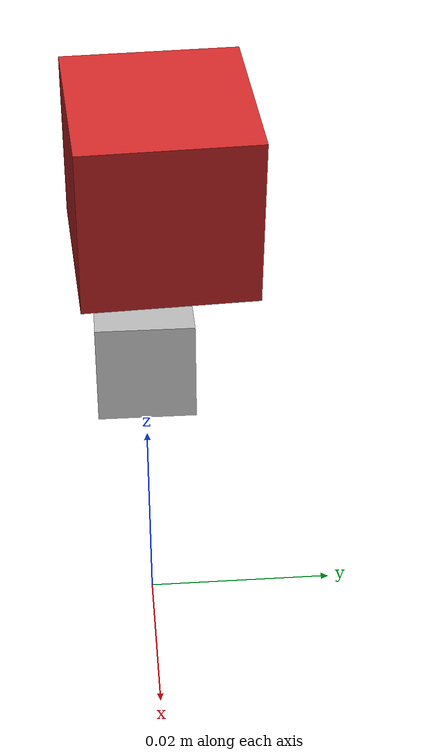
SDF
<sdf version='1.7'>
  <model name='clyde'>
    <link name='base_footprint'>
      <inertial>
        <pose>0.002226 -0.001551 0.027938 0 -0 0</pose>
        <mass>0.207996</mass>
        <inertia>
          <ixx>9.37836e-05</ixx>
          <ixy>-1.59854e-05</ixy>
          <ixz>4.90189e-06</ixz>
          <iyy>0.00020289</iyy>
          <iyz>-9.9545e-07</iyz>
          <izz>0.000278102</izz>
        </inertia>
      </inertial>
      <collision name='base_footprint_fixed_joint_lump__base_link_collision'>
        <pose>0 0 0 0 -0 0</pose>
        <geometry>
          <mesh>
            <scale>0.001 0.001 0.001</scale>
            <uri>file:///workspaces/clyderos2/install/share/clyde_description/src/models/clyde_model/meshes/base_link.stl</uri>
          </mesh>
        </geometry>
        <surface>
          <contact>
            <ode/>
          </contact>
          <friction>
            <ode>
              <mu>0.2</mu>
              <mu2>0.2</mu2>
            </ode>
          </friction>
        </surface>
      </collision>
      <collision name='base_footprint_fixed_joint_lump__front__1_collision_1'>
        <pose>0 0 0 0 -0 0</pose>
        <geometry>
          <mesh>
            <scale>0.001 0.001 0.001</scale>
            <uri>file:///workspaces/clyderos2/install/share/clyde_description/src/models/clyde_model/meshes/front__1.stl</uri>
          </mesh>
        </geometry>
        <surface>
          <contact>
            <ode/>
          </contact>
          <friction>
            <ode>
              <mu>0.2</mu>
              <mu2>0.2</mu2>
            </ode>
          </friction>
        </surface>
      </collision>
      <collision name='base_footprint_fixed_joint_lump__rear__1_collision_2'>
        <pose>0 0 0 0 -0 0</pose>
        <geometry>
          <mesh>
            <scale>0.001 0.001 0.001</scale>
            <uri>file:///workspaces/clyderos2/install/share/clyde_description/src/models/clyde_model/meshes/rear__1.stl</uri>
          </mesh>
        </geometry>
        <surface>
          <contact>
            <ode/>
          </contact>
          <friction>
            <ode>
              <mu>0.2</mu>
              <mu2>0.2</mu2>
            </ode>
          </friction>
        </surface>
      </collision>
      <collision name='base_footprint_fixed_joint_lump__servo_rfs_1_collision_3'>
        <pose>0 0 0 0 -0 0</pose>
        <geometry>
          <mesh>
            <scale>0.001 0.001 0.001</scale>
            <uri>file:///workspaces/clyderos2/install/share/clyde_description/src/models/clyde_model/meshes/servo_rfs_1.stl</uri>
          </mesh>
        </geometry>
        <surface>
          <contact>
            <ode/>
          </contact>
          <friction>
            <ode>
              <mu>0.2</mu>
              <mu2>0.2</mu2>
            </ode>
          </friction>
        </surface>
      </collision>
      <collision name='base_footprint_fixed_joint_lump__servo_lfs_1_collision_4'>
        <pose>0 0 0 0 -0 0</pose>
        <geometry>
          <mesh>
            <scale>0.001 0.001 0.001</scale>
            <uri>file:///workspaces/clyderos2/install/share/clyde_description/src/models/clyde_model/meshes/servo_lfs_1.stl</uri>
          </mesh>
        </geometry>
        <surface>
          <contact>
            <ode/>
          </contact>
          <friction>
            <ode>
              <mu>0.2</mu>
              <mu2>0.2</mu2>
            </ode>
          </friction>
        </surface>
      </collision>
      <collision name='base_footprint_fixed_joint_lump__servo_rrs__1_collision_5'>
        <pose>0 0 0 0 -0 0</pose>
        <geometry>
          <mesh>
            <scale>0.001 0.001 0.001</scale>
            <uri>file:///workspaces/clyderos2/install/share/clyde_description/src/models/clyde_model/meshes/servo_rrs__1.stl</uri>
          </mesh>
        </geometry>
        <surface>
          <contact>
            <ode/>
          </contact>
          <friction>
            <ode>
              <mu>0.2</mu>
              <mu2>0.2</mu2>
            </ode>
          </friction>
        </surface>
      </collision>
      <collision name='base_footprint_fixed_joint_lump__cover_1_collision_6'>
        <pose>0 0 0 0 -0 0</pose>
        <geometry>
          <mesh>
            <scale>0.001 0.001 0.001</scale>
            <uri>file:///workspaces/clyderos2/install/share/clyde_description/src/models/clyde_model/meshes/cover_1.stl</uri>
          </mesh>
        </geometry>
        <surface>
          <contact>
            <ode/>
          </contact>
          <friction>
            <ode>
              <mu>0.2</mu>
              <mu2>0.2</mu2>
            </ode>
          </friction>
        </surface>
      </collision>
      <collision name='base_footprint_fixed_joint_lump__battery_1_collision_7'>
        <pose>0 0 0 0 -0 0</pose>
        <geometry>
          <mesh>
            <scale>0.001 0.001 0.001</scale>
            <uri>file:///workspaces/clyderos2/install/share/clyde_description/src/models/clyde_model/meshes/battery_1.stl</uri>
          </mesh>
        </geometry>
        <surface>
          <contact>
            <ode/>
          </contact>
          <friction>
            <ode>
              <mu>0.2</mu>
              <mu2>0.2</mu2>
            </ode>
          </friction>
        </surface>
      </collision>
      <collision name='base_footprint_fixed_joint_lump__servo_lrs__1_collision_8'>
        <pose>0 0 0 0 -0 0</pose>
        <geometry>
          <mesh>
            <scale>0.001 0.001 0.001</scale>
            <uri>file:///workspaces/clyderos2/install/share/clyde_description/src/models/clyde_model/meshes/servo_lrs__1.stl</uri>
          </mesh>
        </geometry>
        <surface>
          <contact>
            <ode/>
          </contact>
          <friction>
            <ode>
              <mu>0.2</mu>
              <mu2>0.2</mu2>
            </ode>
          </friction>
        </surface>
      </collision>
      <collision name='base_footprint_fixed_joint_lump__c_neck__1_collision_9'>
        <pose>0 0 0 0 -0 0</pose>
        <geometry>
          <mesh>
            <scale>0.001 0.001 0.001</scale>
            <uri>file:///workspaces/clyderos2/install/share/clyde_description/src/models/clyde_model/meshes/c_neck__1.stl</uri>
          </mesh>
        </geometry>
        <surface>
          <contact>
            <ode/>
          </contact>
          <friction>
            <ode>
              <mu>0.2</mu>
              <mu2>0.2</mu2>
            </ode>
          </friction>
        </surface>
      </collision>
      <collision name='base_footprint_fixed_joint_lump__imu_link_collision_10'>
        <pose>0 0 0.03 0 -0 0</pose>
        <geometry>
          <box>
            <size>0.01 0.01 0.01</size>
          </box>
        </geometry>
        <surface>
          <contact>
            <ode/>
          </contact>
          <friction>
            <ode/>
          </friction>
        </surface>
      </collision>
      <visual name='base_footprint_fixed_joint_lump__base_link_visual'>
        <pose>0 0 0 0 -0 0</pose>
        <geometry>
          <mesh>
            <scale>0.001 0.001 0.001</scale>
            <uri>file:///workspaces/clyderos2/install/share/clyde_description/src/models/clyde_model/meshes/base_link.stl</uri>
          </mesh>
        </geometry>
        <material>
          <ambient>255 171 80 1</ambient>
        </material>
      </visual>
      <visual name='base_footprint_fixed_joint_lump__front__1_visual_1'>
        <pose>0 0 0 0 -0 0</pose>
        <geometry>
          <mesh>
            <scale>0.001 0.001 0.001</scale>
            <uri>file:///workspaces/clyderos2/install/share/clyde_description/src/models/clyde_model/meshes/front__1.stl</uri>
          </mesh>
        </geometry>
        <material>
          <ambient>0 167 255 1</ambient>
        </material>
      </visual>
      <visual name='base_footprint_fixed_joint_lump__rear__1_visual_2'>
        <pose>0 0 0 0 -0 0</pose>
        <geometry>
          <mesh>
            <scale>0.001 0.001 0.001</scale>
            <uri>file:///workspaces/clyderos2/install/share/clyde_description/src/models/clyde_model/meshes/rear__1.stl</uri>
          </mesh>
        </geometry>
        <material>
          <ambient>0 167 255 1</ambient>
        </material>
      </visual>
      <visual name='base_footprint_fixed_joint_lump__servo_rfs_1_visual_3'>
        <pose>0 0 0 0 -0 0</pose>
        <geometry>
          <mesh>
            <scale>0.001 0.001 0.001</scale>
            <uri>file:///workspaces/clyderos2/install/share/clyde_description/src/models/clyde_model/meshes/servo_rfs_1.stl</uri>
          </mesh>
        </geometry>
        <material>
          <ambient>39 61 51 1</ambient>
        </material>
      </visual>
      <visual name='base_footprint_fixed_joint_lump__servo_lfs_1_visual_4'>
        <pose>0 0 0 0 -0 0</pose>
        <geometry>
          <mesh>
            <scale>0.001 0.001 0.001</scale>
            <uri>file:///workspaces/clyderos2/install/share/clyde_description/src/models/clyde_model/meshes/servo_lfs_1.stl</uri>
          </mesh>
        </geometry>
        <material>
          <ambient>39 61 51 1</ambient>
        </material>
      </visual>
      <visual name='base_footprint_fixed_joint_lump__servo_rrs__1_visual_5'>
        <pose>0 0 0 0 -0 0</pose>
        <geometry>
          <mesh>
            <scale>0.001 0.001 0.001</scale>
            <uri>file:///workspaces/clyderos2/install/share/clyde_description/src/models/clyde_model/meshes/servo_rrs__1.stl</uri>
          </mesh>
        </geometry>
        <material>
          <ambient>39 61 51 1</ambient>
        </material>
      </visual>
      <visual name='base_footprint_fixed_joint_lump__cover_1_visual_6'>
        <pose>0 0 0 0 -0 0</pose>
        <geometry>
          <mesh>
            <scale>0.001 0.001 0.001</scale>
            <uri>file:///workspaces/clyderos2/install/share/clyde_description/src/models/clyde_model/meshes/cover_1.stl</uri>
          </mesh>
        </geometry>
        <material>
          <ambient>73 73 70 1</ambient>
        </material>
      </visual>
      <visual name='base_footprint_fixed_joint_lump__battery_1_visual_7'>
        <pose>0 0 0 0 -0 0</pose>
        <geometry>
          <mesh>
            <scale>0.001 0.001 0.001</scale>
            <uri>file:///workspaces/clyderos2/install/share/clyde_description/src/models/clyde_model/meshes/battery_1.stl</uri>
          </mesh>
        </geometry>
        <material>
          <ambient>73 73 70 1</ambient>
        </material>
      </visual>
      <visual name='base_footprint_fixed_joint_lump__servo_lrs__1_visual_8'>
        <pose>0 0 0 0 -0 0</pose>
        <geometry>
          <mesh>
            <scale>0.001 0.001 0.001</scale>
            <uri>file:///workspaces/clyderos2/install/share/clyde_description/src/models/clyde_model/meshes/servo_lrs__1.stl</uri>
          </mesh>
        </geometry>
        <material>
          <ambient>39 61 51 1</ambient>
        </material>
      </visual>
      <visual name='base_footprint_fixed_joint_lump__c_neck__1_visual_9'>
        <pose>0 0 0 0 -0 0</pose>
        <geometry>
          <mesh>
            <scale>0.001 0.001 0.001</scale>
            <uri>file:///workspaces/clyderos2/install/share/clyde_description/src/models/clyde_model/meshes/c_neck__1.stl</uri>
          </mesh>
        </geometry>
        <material>
          <ambient>244 229 167 1</ambient>
        </material>
      </visual>
      <visual name='base_footprint_fixed_joint_lump__imu_link_visual_10'>
        <pose>0 0 0.03 0 -0 0</pose>
        <geometry>
          <box>
            <size>0.01 0.01 0.01</size>
          </box>
        </geometry>
      </visual>
      <gravity>1</gravity>
      <self_collide>1</self_collide>
      <sensor name='imu_sensor' type='imu'>
        <plugin name='imu_plugin' filename='libgazebo_ros_imu_sensor.so'>
          <ros>
            <namespace>/clyde</namespace>
            <remapping>~/out:=imu</remapping>
          </ros>
          <initial_orientation_as_reference>0</initial_orientation_as_reference>
        </plugin>
        <always_on>1</always_on>
        <update_rate>100</update_rate>
        <visualize>1</visualize>
        <imu>
          <angular_velocity>
            <x>
              <noise type='gaussian'>
                <mean>0</mean>
                <stddev>0.0002</stddev>
                <bias_mean>7.5e-06</bias_mean>
                <bias_stddev>8e-07</bias_stddev>
              </noise>
            </x>
            <y>
              <noise type='gaussian'>
                <mean>0</mean>
                <stddev>0.0002</stddev>
                <bias_mean>7.5e-06</bias_mean>
                <bias_stddev>8e-07</bias_stddev>
              </noise>
            </y>
            <z>
              <noise type='gaussian'>
                <mean>0</mean>
                <stddev>0.0002</stddev>
                <bias_mean>7.5e-06</bias_mean>
                <bias_stddev>8e-07</bias_stddev>
              </noise>
            </z>
          </angular_velocity>
          <linear_acceleration>
            <x>
              <noise type='gaussian'>
                <mean>0</mean>
                <stddev>0.017</stddev>
                <bias_mean>0.1</bias_mean>
                <bias_stddev>0.001</bias_stddev>
              </noise>
            </x>
            <y>
              <noise type='gaussian'>
                <mean>0</mean>
                <stddev>0.017</stddev>
                <bias_mean>0.1</bias_mean>
                <bias_stddev>0.001</bias_stddev>
              </noise>
            </y>
            <z>
              <noise type='gaussian'>
                <mean>0</mean>
                <stddev>0.017</stddev>
                <bias_mean>0.1</bias_mean>
                <bias_stddev>0.001</bias_stddev>
              </noise>
            </z>
          </linear_acceleration>
        </imu>
        <pose>0 0 0.03 0 -0 0</pose>
      </sensor>
    </link>
    <joint name='shrfs_joint' type='revolute'>
      <pose relative_to='base_footprint'>0.0525 -0.0485 0.022 0 -0.804 0</pose>
      <parent>base_footprint</parent>
      <child>c_thrf__1</child>
      <axis>
        <xyz>0 1 0</xyz>
        <limit>
          <lower>-1e+16</lower>
          <upper>1e+16</upper>
        </limit>
        <dynamics>
          <spring_reference>0</spring_reference>
          <spring_stiffness>0</spring_stiffness>
        </dynamics>
      </axis>
    </joint>
    <link name='c_thrf__1'>
      <pose relative_to='shrfs_joint'>0 0 0 0 -0 0</pose>
      <inertial>
        <pose>-0.022218 -0.001215 -0.005953 0 -0 0</pose>
        <mass>0.0047131</mass>
        <inertia>
          <ixx>6.06305e-08</ixx>
          <ixy>-1.63518e-08</ixy>
          <ixz>-1.99985e-07</ixz>
          <iyy>7.99936e-07</iyy>
          <iyz>-4.36986e-09</iyz>
          <izz>7.53395e-07</izz>
        </inertia>
      </inertial>
      <collision name='c_thrf__1_collision'>
        <pose>-0.0525 0.0485 -0.022 0 -0 0</pose>
        <geometry>
          <mesh>
            <scale>0.001 0.001 0.001</scale>
            <uri>file:///workspaces/clyderos2/install/share/clyde_description/src/models/clyde_model/meshes/c_thrf__1.stl</uri>
          </mesh>
        </geometry>
        <surface>
          <contact>
            <ode/>
          </contact>
          <friction>
            <ode>
              <mu>0.2</mu>
              <mu2>0.2</mu2>
            </ode>
          </friction>
        </surface>
      </collision>
      <collision name='c_thrf__1_fixed_joint_lump__th_rf_1_collision_1'>
        <pose>-0.0525 0.0485 -0.022 0 -0 0</pose>
        <geometry>
          <mesh>
            <scale>0.001 0.001 0.001</scale>
            <uri>file:///workspaces/clyderos2/install/share/clyde_description/src/models/clyde_model/meshes/th_rf_1.stl</uri>
          </mesh>
        </geometry>
        <surface>
          <contact>
            <ode/>
          </contact>
          <friction>
            <ode>
              <mu>0.2</mu>
              <mu2>0.2</mu2>
            </ode>
          </friction>
        </surface>
      </collision>
      <collision name='c_thrf__1_fixed_joint_lump__tho_rf__1_collision_2'>
        <pose>-0.0525 0.0485 -0.022 0 -0 0</pose>
        <geometry>
          <mesh>
            <scale>0.001 0.001 0.001</scale>
            <uri>file:///workspaces/clyderos2/install/share/clyde_description/src/models/clyde_model/meshes/tho_rf__1.stl</uri>
          </mesh>
        </geometry>
        <surface>
          <contact>
            <ode/>
          </contact>
          <friction>
            <ode>
              <mu>0.2</mu>
              <mu2>0.2</mu2>
            </ode>
          </friction>
        </surface>
      </collision>
      <collision name='c_thrf__1_fixed_joint_lump__c_thorf_1_collision_3'>
        <pose>-0.0525 0.0485 -0.022 0 -0 0</pose>
        <geometry>
          <mesh>
            <scale>0.001 0.001 0.001</scale>
            <uri>file:///workspaces/clyderos2/install/share/clyde_description/src/models/clyde_model/meshes/c_thorf_1.stl</uri>
          </mesh>
        </geometry>
        <surface>
          <contact>
            <ode/>
          </contact>
          <friction>
            <ode>
              <mu>0.2</mu>
              <mu2>0.2</mu2>
            </ode>
          </friction>
        </surface>
      </collision>
      <collision name='c_thrf__1_fixed_joint_lump__tube__1_collision_4'>
        <pose>-0.0525 0.0485 -0.022 0 -0 0</pose>
        <geometry>
          <mesh>
            <scale>0.001 0.001 0.001</scale>
            <uri>file:///workspaces/clyderos2/install/share/clyde_description/src/models/clyde_model/meshes/tube__1.stl</uri>
          </mesh>
        </geometry>
        <surface>
          <contact>
            <ode/>
          </contact>
          <friction>
            <ode>
              <mu>0.2</mu>
              <mu2>0.2</mu2>
            </ode>
          </friction>
        </surface>
      </collision>
      <visual name='c_thrf__1_visual'>
        <pose>-0.0525 0.0485 -0.022 0 -0 0</pose>
        <geometry>
          <mesh>
            <scale>0.001 0.001 0.001</scale>
            <uri>file:///workspaces/clyderos2/install/share/clyde_description/src/models/clyde_model/meshes/c_thrf__1.stl</uri>
          </mesh>
        </geometry>
        <material>
          <ambient>244 229 167 1</ambient>
        </material>
      </visual>
      <visual name='c_thrf__1_fixed_joint_lump__th_rf_1_visual_1'>
        <pose>-0.0525 0.0485 -0.022 0 -0 0</pose>
        <geometry>
          <mesh>
            <scale>0.001 0.001 0.001</scale>
            <uri>file:///workspaces/clyderos2/install/share/clyde_description/src/models/clyde_model/meshes/th_rf_1.stl</uri>
          </mesh>
        </geometry>
        <material>
          <ambient>255 171 80 1</ambient>
        </material>
      </visual>
      <visual name='c_thrf__1_fixed_joint_lump__tho_rf__1_visual_2'>
        <pose>-0.0525 0.0485 -0.022 0 -0 0</pose>
        <geometry>
          <mesh>
            <scale>0.001 0.001 0.001</scale>
            <uri>file:///workspaces/clyderos2/install/share/clyde_description/src/models/clyde_model/meshes/tho_rf__1.stl</uri>
          </mesh>
        </geometry>
        <material>
          <ambient>73 73 70 1</ambient>
        </material>
      </visual>
      <visual name='c_thrf__1_fixed_joint_lump__c_thorf_1_visual_3'>
        <pose>-0.0525 0.0485 -0.022 0 -0 0</pose>
        <geometry>
          <mesh>
            <scale>0.001 0.001 0.001</scale>
            <uri>file:///workspaces/clyderos2/install/share/clyde_description/src/models/clyde_model/meshes/c_thorf_1.stl</uri>
          </mesh>
        </geometry>
        <material>
          <ambient>244 229 167 1</ambient>
        </material>
      </visual>
      <visual name='c_thrf__1_fixed_joint_lump__tube__1_visual_4'>
        <pose>-0.0525 0.0485 -0.022 0 -0 0</pose>
        <geometry>
          <mesh>
            <scale>0.001 0.001 0.001</scale>
            <uri>file:///workspaces/clyderos2/install/share/clyde_description/src/models/clyde_model/meshes/tube__1.stl</uri>
          </mesh>
        </geometry>
        <material>
          <ambient>0 167 255 1</ambient>
        </material>
      </visual>
      <self_collide>1</self_collide>
    </link>
    <joint name='shrft_joint' type='revolute'>
      <pose relative_to='c_thrf__1'>-0.044433 0.00142 -0.011906 -3.14159 1.287 -3.14159</pose>
      <parent>c_thrf__1</parent>
      <child>servos_rf_1</child>
      <axis>
        <xyz>0 1 0</xyz>
        <limit>
          <lower>-1e+16</lower>
          <upper>1e+16</upper>
        </limit>
        <dynamics>
          <spring_reference>0</spring_reference>
          <spring_stiffness>0</spring_stiffness>
        </dynamics>
      </axis>
    </joint>
    <link name='servos_rf_1'>
      <pose relative_to='shrft_joint'>0 0 0 0 -0 0</pose>
      <inertial>
        <pose>0.007653 0.012412 -0.000544 0 -0 0</pose>
        <mass>0.0185326</mass>
        <inertia>
          <ixx>1.00116e-06</ixx>
          <ixy>-2.08202e-08</ixy>
          <ixz>1.04994e-08</ixz>
          <iyy>2.47087e-06</iyy>
          <iyz>4.64478e-10</iyz>
          <izz>2.47155e-06</izz>
        </inertia>
      </inertial>
      <collision name='servos_rf_1_collision'>
        <pose>-0.008067 0.04708 -0.010094 0 -0 0</pose>
        <geometry>
          <mesh>
            <scale>0.001 0.001 0.001</scale>
            <uri>file:///workspaces/clyderos2/install/share/clyde_description/src/models/clyde_model/meshes/servos_rf_1.stl</uri>
          </mesh>
        </geometry>
        <surface>
          <contact>
            <ode/>
          </contact>
          <friction>
            <ode>
              <mu>0.2</mu>
              <mu2>0.2</mu2>
            </ode>
          </friction>
        </surface>
      </collision>
      <collision name='servos_rf_1_fixed_joint_lump__shank_rf_1_collision_1'>
        <pose>-0.008067 0.04708 -0.010094 0 -0 0</pose>
        <geometry>
          <mesh>
            <scale>0.001 0.001 0.001</scale>
            <uri>file:///workspaces/clyderos2/install/share/clyde_description/src/models/clyde_model/meshes/shank_rf_1.stl</uri>
          </mesh>
        </geometry>
        <surface>
          <contact>
            <ode/>
          </contact>
          <friction>
            <ode>
              <mu>0.2</mu>
              <mu2>0.2</mu2>
            </ode>
          </friction>
        </surface>
      </collision>
      <visual name='servos_rf_1_visual'>
        <pose>-0.008067 0.04708 -0.010094 0 -0 0</pose>
        <geometry>
          <mesh>
            <scale>0.001 0.001 0.001</scale>
            <uri>file:///workspaces/clyderos2/install/share/clyde_description/src/models/clyde_model/meshes/servos_rf_1.stl</uri>
          </mesh>
        </geometry>
        <material>
          <ambient>39 61 51 1</ambient>
        </material>
      </visual>
      <visual name='servos_rf_1_fixed_joint_lump__shank_rf_1_visual_1'>
        <pose>-0.008067 0.04708 -0.010094 0 -0 0</pose>
        <geometry>
          <mesh>
            <scale>0.001 0.001 0.001</scale>
            <uri>file:///workspaces/clyderos2/install/share/clyde_description/src/models/clyde_model/meshes/shank_rf_1.stl</uri>
          </mesh>
        </geometry>
        <material>
          <ambient>73 73 70 1</ambient>
        </material>
      </visual>
      <self_collide>1</self_collide>
    </link>
    <joint name='shlfs_joint' type='revolute'>
      <pose relative_to='base_footprint'>0.0525 0.0485 0.022 0 -0.804 0</pose>
      <parent>base_footprint</parent>
      <child>c_thlf_1</child>
      <axis>
        <xyz>0 1 0</xyz>
        <limit>
          <lower>-1e+16</lower>
          <upper>1e+16</upper>
        </limit>
        <dynamics>
          <spring_reference>0</spring_reference>
          <spring_stiffness>0</spring_stiffness>
        </dynamics>
      </axis>
    </joint>
    <link name='c_thlf_1'>
      <pose relative_to='shlfs_joint'>0 0 0 0 -0 0</pose>
      <inertial>
        <pose>-0.022218 0.001215 -0.005953 0 -0 0</pose>
        <mass>0.00471308</mass>
        <inertia>
          <ixx>6.06299e-08</ixx>
          <ixy>1.63516e-08</ixy>
          <ixz>-1.99983e-07</ixz>
          <iyy>7.99931e-07</iyy>
          <iyz>4.36994e-09</iyz>
          <izz>7.5339e-07</izz>
        </inertia>
      </inertial>
      <collision name='c_thlf_1_collision'>
        <pose>-0.0525 -0.0485 -0.022 0 -0 0</pose>
        <geometry>
          <mesh>
            <scale>0.001 0.001 0.001</scale>
            <uri>file:///workspaces/clyderos2/install/share/clyde_description/src/models/clyde_model/meshes/c_thlf_1.stl</uri>
          </mesh>
        </geometry>
        <surface>
          <contact>
            <ode/>
          </contact>
          <friction>
            <ode>
              <mu>0.2</mu>
              <mu2>0.2</mu2>
            </ode>
          </friction>
        </surface>
      </collision>
      <collision name='c_thlf_1_fixed_joint_lump__th_lf_1_collision_1'>
        <pose>-0.0525 -0.0485 -0.022 0 -0 0</pose>
        <geometry>
          <mesh>
            <scale>0.001 0.001 0.001</scale>
            <uri>file:///workspaces/clyderos2/install/share/clyde_description/src/models/clyde_model/meshes/th_lf_1.stl</uri>
          </mesh>
        </geometry>
        <surface>
          <contact>
            <ode/>
          </contact>
          <friction>
            <ode>
              <mu>0.2</mu>
              <mu2>0.2</mu2>
            </ode>
          </friction>
        </surface>
      </collision>
      <collision name='c_thlf_1_fixed_joint_lump__tho_lf_1_collision_2'>
        <pose>-0.0525 -0.0485 -0.022 0 -0 0</pose>
        <geometry>
          <mesh>
            <scale>0.001 0.001 0.001</scale>
            <uri>file:///workspaces/clyderos2/install/share/clyde_description/src/models/clyde_model/meshes/tho_lf_1.stl</uri>
          </mesh>
        </geometry>
        <surface>
          <contact>
            <ode/>
          </contact>
          <friction>
            <ode>
              <mu>0.2</mu>
              <mu2>0.2</mu2>
            </ode>
          </friction>
        </surface>
      </collision>
      <collision name='c_thlf_1_fixed_joint_lump__c_tholf_1_collision_3'>
        <pose>-0.0525 -0.0485 -0.022 0 -0 0</pose>
        <geometry>
          <mesh>
            <scale>0.001 0.001 0.001</scale>
            <uri>file:///workspaces/clyderos2/install/share/clyde_description/src/models/clyde_model/meshes/c_tholf_1.stl</uri>
          </mesh>
        </geometry>
        <surface>
          <contact>
            <ode/>
          </contact>
          <friction>
            <ode>
              <mu>0.2</mu>
              <mu2>0.2</mu2>
            </ode>
          </friction>
        </surface>
      </collision>
      <collision name='c_thlf_1_fixed_joint_lump__tube_lf_1_collision_4'>
        <pose>-0.0525 -0.0485 -0.022 0 -0 0</pose>
        <geometry>
          <mesh>
            <scale>0.001 0.001 0.001</scale>
            <uri>file:///workspaces/clyderos2/install/share/clyde_description/src/models/clyde_model/meshes/tube_lf_1.stl</uri>
          </mesh>
        </geometry>
        <surface>
          <contact>
            <ode/>
          </contact>
          <friction>
            <ode>
              <mu>0.2</mu>
              <mu2>0.2</mu2>
            </ode>
          </friction>
        </surface>
      </collision>
      <visual name='c_thlf_1_visual'>
        <pose>-0.0525 -0.0485 -0.022 0 -0 0</pose>
        <geometry>
          <mesh>
            <scale>0.001 0.001 0.001</scale>
            <uri>file:///workspaces/clyderos2/install/share/clyde_description/src/models/clyde_model/meshes/c_thlf_1.stl</uri>
          </mesh>
        </geometry>
        <material>
          <ambient>244 229 167 1</ambient>
        </material>
      </visual>
      <visual name='c_thlf_1_fixed_joint_lump__th_lf_1_visual_1'>
        <pose>-0.0525 -0.0485 -0.022 0 -0 0</pose>
        <geometry>
          <mesh>
            <scale>0.001 0.001 0.001</scale>
            <uri>file:///workspaces/clyderos2/install/share/clyde_description/src/models/clyde_model/meshes/th_lf_1.stl</uri>
          </mesh>
        </geometry>
        <material>
          <ambient>255 171 80 1</ambient>
        </material>
      </visual>
      <visual name='c_thlf_1_fixed_joint_lump__tho_lf_1_visual_2'>
        <pose>-0.0525 -0.0485 -0.022 0 -0 0</pose>
        <geometry>
          <mesh>
            <scale>0.001 0.001 0.001</scale>
            <uri>file:///workspaces/clyderos2/install/share/clyde_description/src/models/clyde_model/meshes/tho_lf_1.stl</uri>
          </mesh>
        </geometry>
        <material>
          <ambient>73 73 70 1</ambient>
        </material>
      </visual>
      <visual name='c_thlf_1_fixed_joint_lump__c_tholf_1_visual_3'>
        <pose>-0.0525 -0.0485 -0.022 0 -0 0</pose>
        <geometry>
          <mesh>
            <scale>0.001 0.001 0.001</scale>
            <uri>file:///workspaces/clyderos2/install/share/clyde_description/src/models/clyde_model/meshes/c_tholf_1.stl</uri>
          </mesh>
        </geometry>
        <material>
          <ambient>244 229 167 1</ambient>
        </material>
      </visual>
      <visual name='c_thlf_1_fixed_joint_lump__tube_lf_1_visual_4'>
        <pose>-0.0525 -0.0485 -0.022 0 -0 0</pose>
        <geometry>
          <mesh>
            <scale>0.001 0.001 0.001</scale>
            <uri>file:///workspaces/clyderos2/install/share/clyde_description/src/models/clyde_model/meshes/tube_lf_1.stl</uri>
          </mesh>
        </geometry>
        <material>
          <ambient>0 167 255 1</ambient>
        </material>
      </visual>
      <self_collide>1</self_collide>
    </link>
    <joint name='shlft_joint' type='revolute'>
      <pose relative_to='c_thlf_1'>-0.044433 -0.00142 -0.011906 -3.14159 1.287 -3.14159</pose>
      <parent>c_thlf_1</parent>
      <child>servos_lf_1</child>
      <axis>
        <xyz>0 1 0</xyz>
        <limit>
          <lower>-1e+16</lower>
          <upper>1e+16</upper>
        </limit>
        <dynamics>
          <spring_reference>0</spring_reference>
          <spring_stiffness>0</spring_stiffness>
        </dynamics>
      </axis>
    </joint>
    <link name='servos_lf_1'>
      <pose relative_to='shlft_joint'>0 0 0 0 -0 0</pose>
      <inertial>
        <pose>0.007653 -0.012412 -0.000544 0 -0 0</pose>
        <mass>0.0185326</mass>
        <inertia>
          <ixx>1.00116e-06</ixx>
          <ixy>2.08202e-08</ixy>
          <ixz>1.04995e-08</ixz>
          <iyy>2.47087e-06</iyy>
          <iyz>-4.64481e-10</iyz>
          <izz>2.47156e-06</izz>
        </inertia>
      </inertial>
      <collision name='servos_lf_1_collision'>
        <pose>-0.008067 -0.04708 -0.010094 0 -0 0</pose>
        <geometry>
          <mesh>
            <scale>0.001 0.001 0.001</scale>
            <uri>file:///workspaces/clyderos2/install/share/clyde_description/src/models/clyde_model/meshes/servos_lf_1.stl</uri>
          </mesh>
        </geometry>
        <surface>
          <contact>
            <ode/>
          </contact>
          <friction>
            <ode>
              <mu>0.2</mu>
              <mu2>0.2</mu2>
            </ode>
          </friction>
        </surface>
      </collision>
      <collision name='servos_lf_1_fixed_joint_lump__shank_lf_1_collision_1'>
        <pose>-0.008067 -0.04708 -0.010094 0 -0 0</pose>
        <geometry>
          <mesh>
            <scale>0.001 0.001 0.001</scale>
            <uri>file:///workspaces/clyderos2/install/share/clyde_description/src/models/clyde_model/meshes/shank_lf_1.stl</uri>
          </mesh>
        </geometry>
        <surface>
          <contact>
            <ode/>
          </contact>
          <friction>
            <ode>
              <mu>0.2</mu>
              <mu2>0.2</mu2>
            </ode>
          </friction>
        </surface>
      </collision>
      <visual name='servos_lf_1_visual'>
        <pose>-0.008067 -0.04708 -0.010094 0 -0 0</pose>
        <geometry>
          <mesh>
            <scale>0.001 0.001 0.001</scale>
            <uri>file:///workspaces/clyderos2/install/share/clyde_description/src/models/clyde_model/meshes/servos_lf_1.stl</uri>
          </mesh>
        </geometry>
        <material>
          <ambient>39 61 51 1</ambient>
        </material>
      </visual>
      <visual name='servos_lf_1_fixed_joint_lump__shank_lf_1_visual_1'>
        <pose>-0.008067 -0.04708 -0.010094 0 -0 0</pose>
        <geometry>
          <mesh>
            <scale>0.001 0.001 0.001</scale>
            <uri>file:///workspaces/clyderos2/install/share/clyde_description/src/models/clyde_model/meshes/shank_lf_1.stl</uri>
          </mesh>
        </geometry>
        <material>
          <ambient>73 73 70 1</ambient>
        </material>
      </visual>
      <self_collide>1</self_collide>
    </link>
    <joint name='shrrs_joint' type='revolute'>
      <pose relative_to='base_footprint'>-0.0525 -0.0485 0.022 0 -0.804 0</pose>
      <parent>base_footprint</parent>
      <child>c_thrr_1</child>
      <axis>
        <xyz>0 -1 0</xyz>
        <limit>
          <lower>-1e+16</lower>
          <upper>1e+16</upper>
        </limit>
        <dynamics>
          <spring_reference>0</spring_reference>
          <spring_stiffness>0</spring_stiffness>
        </dynamics>
      </axis>
    </joint>
    <link name='c_thrr_1'>
      <pose relative_to='shrrs_joint'>0 0 0 0 -0 0</pose>
      <inertial>
        <pose>-0.022226 -0.001215 -0.005953 0 -0 0</pose>
        <mass>0.0047131</mass>
        <inertia>
          <ixx>6.06307e-08</ixx>
          <ixy>-1.63522e-08</ixy>
          <ixz>-1.99985e-07</ixz>
          <iyy>7.9994e-07</iyy>
          <iyz>-4.36991e-09</iyz>
          <izz>7.53399e-07</izz>
        </inertia>
      </inertial>
      <collision name='c_thrr_1_collision'>
        <pose>0.0525 0.0485 -0.022 0 -0 0</pose>
        <geometry>
          <mesh>
            <scale>0.001 0.001 0.001</scale>
            <uri>file:///workspaces/clyderos2/install/share/clyde_description/src/models/clyde_model/meshes/c_thrr_1.stl</uri>
          </mesh>
        </geometry>
        <surface>
          <contact>
            <ode/>
          </contact>
          <friction>
            <ode>
              <mu>0.2</mu>
              <mu2>0.2</mu2>
            </ode>
          </friction>
        </surface>
      </collision>
      <collision name='c_thrr_1_fixed_joint_lump__th_rr_1_collision_1'>
        <pose>0.0525 0.0485 -0.022 0 -0 0</pose>
        <geometry>
          <mesh>
            <scale>0.001 0.001 0.001</scale>
            <uri>file:///workspaces/clyderos2/install/share/clyde_description/src/models/clyde_model/meshes/th_rr_1.stl</uri>
          </mesh>
        </geometry>
        <surface>
          <contact>
            <ode/>
          </contact>
          <friction>
            <ode>
              <mu>0.2</mu>
              <mu2>0.2</mu2>
            </ode>
          </friction>
        </surface>
      </collision>
      <collision name='c_thrr_1_fixed_joint_lump__tho_rr_1_collision_2'>
        <pose>0.0525 0.0485 -0.022 0 -0 0</pose>
        <geometry>
          <mesh>
            <scale>0.001 0.001 0.001</scale>
            <uri>file:///workspaces/clyderos2/install/share/clyde_description/src/models/clyde_model/meshes/tho_rr_1.stl</uri>
          </mesh>
        </geometry>
        <surface>
          <contact>
            <ode/>
          </contact>
          <friction>
            <ode>
              <mu>0.2</mu>
              <mu2>0.2</mu2>
            </ode>
          </friction>
        </surface>
      </collision>
      <collision name='c_thrr_1_fixed_joint_lump__c_thorr_1_collision_3'>
        <pose>0.0525 0.0485 -0.022 0 -0 0</pose>
        <geometry>
          <mesh>
            <scale>0.001 0.001 0.001</scale>
            <uri>file:///workspaces/clyderos2/install/share/clyde_description/src/models/clyde_model/meshes/c_thorr_1.stl</uri>
          </mesh>
        </geometry>
        <surface>
          <contact>
            <ode/>
          </contact>
          <friction>
            <ode>
              <mu>0.2</mu>
              <mu2>0.2</mu2>
            </ode>
          </friction>
        </surface>
      </collision>
      <collision name='c_thrr_1_fixed_joint_lump__tube_rr_1_collision_4'>
        <pose>0.0525 0.0485 -0.022 0 -0 0</pose>
        <geometry>
          <mesh>
            <scale>0.001 0.001 0.001</scale>
            <uri>file:///workspaces/clyderos2/install/share/clyde_description/src/models/clyde_model/meshes/tube_rr_1.stl</uri>
          </mesh>
        </geometry>
        <surface>
          <contact>
            <ode/>
          </contact>
          <friction>
            <ode>
              <mu>0.2</mu>
              <mu2>0.2</mu2>
            </ode>
          </friction>
        </surface>
      </collision>
      <visual name='c_thrr_1_visual'>
        <pose>0.0525 0.0485 -0.022 0 -0 0</pose>
        <geometry>
          <mesh>
            <scale>0.001 0.001 0.001</scale>
            <uri>file:///workspaces/clyderos2/install/share/clyde_description/src/models/clyde_model/meshes/c_thrr_1.stl</uri>
          </mesh>
        </geometry>
        <material>
          <ambient>244 229 167 1</ambient>
        </material>
      </visual>
      <visual name='c_thrr_1_fixed_joint_lump__th_rr_1_visual_1'>
        <pose>0.0525 0.0485 -0.022 0 -0 0</pose>
        <geometry>
          <mesh>
            <scale>0.001 0.001 0.001</scale>
            <uri>file:///workspaces/clyderos2/install/share/clyde_description/src/models/clyde_model/meshes/th_rr_1.stl</uri>
          </mesh>
        </geometry>
        <material>
          <ambient>255 171 80 1</ambient>
        </material>
      </visual>
      <visual name='c_thrr_1_fixed_joint_lump__tho_rr_1_visual_2'>
        <pose>0.0525 0.0485 -0.022 0 -0 0</pose>
        <geometry>
          <mesh>
            <scale>0.001 0.001 0.001</scale>
            <uri>file:///workspaces/clyderos2/install/share/clyde_description/src/models/clyde_model/meshes/tho_rr_1.stl</uri>
          </mesh>
        </geometry>
        <material>
          <ambient>73 73 70 1</ambient>
        </material>
      </visual>
      <visual name='c_thrr_1_fixed_joint_lump__c_thorr_1_visual_3'>
        <pose>0.0525 0.0485 -0.022 0 -0 0</pose>
        <geometry>
          <mesh>
            <scale>0.001 0.001 0.001</scale>
            <uri>file:///workspaces/clyderos2/install/share/clyde_description/src/models/clyde_model/meshes/c_thorr_1.stl</uri>
          </mesh>
        </geometry>
        <material>
          <ambient>244 229 167 1</ambient>
        </material>
      </visual>
      <visual name='c_thrr_1_fixed_joint_lump__tube_rr_1_visual_4'>
        <pose>0.0525 0.0485 -0.022 0 -0 0</pose>
        <geometry>
          <mesh>
            <scale>0.001 0.001 0.001</scale>
            <uri>file:///workspaces/clyderos2/install/share/clyde_description/src/models/clyde_model/meshes/tube_rr_1.stl</uri>
          </mesh>
        </geometry>
        <material>
          <ambient>0 167 255 1</ambient>
        </material>
      </visual>
      <self_collide>1</self_collide>
    </link>
    <joint name='shrrt_joint' type='revolute'>
      <pose relative_to='c_thrr_1'>-0.044433 0.00142 -0.011906 -3.14159 1.287 -3.14159</pose>
      <parent>c_thrr_1</parent>
      <child>servos_rr_1</child>
      <axis>
        <xyz>0 1 0</xyz>
        <limit>
          <lower>-1e+16</lower>
          <upper>1e+16</upper>
        </limit>
        <dynamics>
          <spring_reference>0</spring_reference>
          <spring_stiffness>0</spring_stiffness>
        </dynamics>
      </axis>
    </joint>
    <link name='servos_rr_1'>
      <pose relative_to='shrrt_joint'>0 0 0 0 -0 0</pose>
      <inertial>
        <pose>0.007653 0.012412 -0.000544 0 -0 0</pose>
        <mass>0.0185326</mass>
        <inertia>
          <ixx>1.00116e-06</ixx>
          <ixy>-2.08189e-08</ixy>
          <ixz>1.04987e-08</ixz>
          <iyy>2.47081e-06</iyy>
          <iyz>4.64478e-10</iyz>
          <izz>2.4715e-06</izz>
        </inertia>
      </inertial>
      <collision name='servos_rr_1_collision'>
        <pose>0.096933 0.04708 -0.010094 0 -0 0</pose>
        <geometry>
          <mesh>
            <scale>0.001 0.001 0.001</scale>
            <uri>file:///workspaces/clyderos2/install/share/clyde_description/src/models/clyde_model/meshes/servos_rr_1.stl</uri>
          </mesh>
        </geometry>
        <surface>
          <contact>
            <ode/>
          </contact>
          <friction>
            <ode>
              <mu>0.2</mu>
              <mu2>0.2</mu2>
            </ode>
          </friction>
        </surface>
      </collision>
      <collision name='servos_rr_1_fixed_joint_lump__shank_rr_1_collision_1'>
        <pose>0.096933 0.04708 -0.010094 0 -0 0</pose>
        <geometry>
          <mesh>
            <scale>0.001 0.001 0.001</scale>
            <uri>file:///workspaces/clyderos2/install/share/clyde_description/src/models/clyde_model/meshes/shank_rr_1.stl</uri>
          </mesh>
        </geometry>
        <surface>
          <contact>
            <ode/>
          </contact>
          <friction>
            <ode>
              <mu>0.2</mu>
              <mu2>0.2</mu2>
            </ode>
          </friction>
        </surface>
      </collision>
      <visual name='servos_rr_1_visual'>
        <pose>0.096933 0.04708 -0.010094 0 -0 0</pose>
        <geometry>
          <mesh>
            <scale>0.001 0.001 0.001</scale>
            <uri>file:///workspaces/clyderos2/install/share/clyde_description/src/models/clyde_model/meshes/servos_rr_1.stl</uri>
          </mesh>
        </geometry>
        <material>
          <ambient>39 61 51 1</ambient>
        </material>
      </visual>
      <visual name='servos_rr_1_fixed_joint_lump__shank_rr_1_visual_1'>
        <pose>0.096933 0.04708 -0.010094 0 -0 0</pose>
        <geometry>
          <mesh>
            <scale>0.001 0.001 0.001</scale>
            <uri>file:///workspaces/clyderos2/install/share/clyde_description/src/models/clyde_model/meshes/shank_rr_1.stl</uri>
          </mesh>
        </geometry>
        <material>
          <ambient>73 73 70 1</ambient>
        </material>
      </visual>
      <self_collide>1</self_collide>
    </link>
    <joint name='shlrs_joint' type='revolute'>
      <pose relative_to='base_footprint'>-0.0525 0.0485 0.022 0 -0.804 0</pose>
      <parent>base_footprint</parent>
      <child>c_thlr_1</child>
      <axis>
        <xyz>0 -1 0</xyz>
        <limit>
          <lower>-1e+16</lower>
          <upper>1e+16</upper>
        </limit>
        <dynamics>
          <spring_reference>0</spring_reference>
          <spring_stiffness>0</spring_stiffness>
        </dynamics>
      </axis>
    </joint>
    <link name='c_thlr_1'>
      <pose relative_to='shlrs_joint'>0 0 0 0 -0 0</pose>
      <inertial>
        <pose>-0.022226 0.001215 -0.005953 0 -0 0</pose>
        <mass>0.00471308</mass>
        <inertia>
          <ixx>6.06299e-08</ixx>
          <ixy>1.6352e-08</ixy>
          <ixz>-1.99984e-07</ixz>
          <iyy>7.99935e-07</iyy>
          <iyz>4.36999e-09</iyz>
          <izz>7.53394e-07</izz>
        </inertia>
      </inertial>
      <collision name='c_thlr_1_collision'>
        <pose>0.0525 -0.0485 -0.022 0 -0 0</pose>
        <geometry>
          <mesh>
            <scale>0.001 0.001 0.001</scale>
            <uri>file:///workspaces/clyderos2/install/share/clyde_description/src/models/clyde_model/meshes/c_thlr_1.stl</uri>
          </mesh>
        </geometry>
        <surface>
          <contact>
            <ode/>
          </contact>
          <friction>
            <ode>
              <mu>0.2</mu>
              <mu2>0.2</mu2>
            </ode>
          </friction>
        </surface>
      </collision>
      <collision name='c_thlr_1_fixed_joint_lump__th_lr__1_collision_1'>
        <pose>0.0525 -0.0485 -0.022 0 -0 0</pose>
        <geometry>
          <mesh>
            <scale>0.001 0.001 0.001</scale>
            <uri>file:///workspaces/clyderos2/install/share/clyde_description/src/models/clyde_model/meshes/th_lr__1.stl</uri>
          </mesh>
        </geometry>
        <surface>
          <contact>
            <ode/>
          </contact>
          <friction>
            <ode>
              <mu>0.2</mu>
              <mu2>0.2</mu2>
            </ode>
          </friction>
        </surface>
      </collision>
      <collision name='c_thlr_1_fixed_joint_lump__tho_lr_1_collision_2'>
        <pose>0.0525 -0.0485 -0.022 0 -0 0</pose>
        <geometry>
          <mesh>
            <scale>0.001 0.001 0.001</scale>
            <uri>file:///workspaces/clyderos2/install/share/clyde_description/src/models/clyde_model/meshes/tho_lr_1.stl</uri>
          </mesh>
        </geometry>
        <surface>
          <contact>
            <ode/>
          </contact>
          <friction>
            <ode>
              <mu>0.2</mu>
              <mu2>0.2</mu2>
            </ode>
          </friction>
        </surface>
      </collision>
      <collision name='c_thlr_1_fixed_joint_lump__c_tholr__1_collision_3'>
        <pose>0.0525 -0.0485 -0.022 0 -0 0</pose>
        <geometry>
          <mesh>
            <scale>0.001 0.001 0.001</scale>
            <uri>file:///workspaces/clyderos2/install/share/clyde_description/src/models/clyde_model/meshes/c_tholr__1.stl</uri>
          </mesh>
        </geometry>
        <surface>
          <contact>
            <ode/>
          </contact>
          <friction>
            <ode>
              <mu>0.2</mu>
              <mu2>0.2</mu2>
            </ode>
          </friction>
        </surface>
      </collision>
      <collision name='c_thlr_1_fixed_joint_lump__tube_lr_1_collision_4'>
        <pose>0.0525 -0.0485 -0.022 0 -0 0</pose>
        <geometry>
          <mesh>
            <scale>0.001 0.001 0.001</scale>
            <uri>file:///workspaces/clyderos2/install/share/clyde_description/src/models/clyde_model/meshes/tube_lr_1.stl</uri>
          </mesh>
        </geometry>
        <surface>
          <contact>
            <ode/>
          </contact>
          <friction>
            <ode>
              <mu>0.2</mu>
              <mu2>0.2</mu2>
            </ode>
          </friction>
        </surface>
      </collision>
      <visual name='c_thlr_1_visual'>
        <pose>0.0525 -0.0485 -0.022 0 -0 0</pose>
        <geometry>
          <mesh>
            <scale>0.001 0.001 0.001</scale>
            <uri>file:///workspaces/clyderos2/install/share/clyde_description/src/models/clyde_model/meshes/c_thlr_1.stl</uri>
          </mesh>
        </geometry>
        <material>
          <ambient>244 229 167 1</ambient>
        </material>
      </visual>
      <visual name='c_thlr_1_fixed_joint_lump__th_lr__1_visual_1'>
        <pose>0.0525 -0.0485 -0.022 0 -0 0</pose>
        <geometry>
          <mesh>
            <scale>0.001 0.001 0.001</scale>
            <uri>file:///workspaces/clyderos2/install/share/clyde_description/src/models/clyde_model/meshes/th_lr__1.stl</uri>
          </mesh>
        </geometry>
        <material>
          <ambient>255 171 80 1</ambient>
        </material>
      </visual>
      <visual name='c_thlr_1_fixed_joint_lump__tho_lr_1_visual_2'>
        <pose>0.0525 -0.0485 -0.022 0 -0 0</pose>
        <geometry>
          <mesh>
            <scale>0.001 0.001 0.001</scale>
            <uri>file:///workspaces/clyderos2/install/share/clyde_description/src/models/clyde_model/meshes/tho_lr_1.stl</uri>
          </mesh>
        </geometry>
        <material>
          <ambient>73 73 70 1</ambient>
        </material>
      </visual>
      <visual name='c_thlr_1_fixed_joint_lump__c_tholr__1_visual_3'>
        <pose>0.0525 -0.0485 -0.022 0 -0 0</pose>
        <geometry>
          <mesh>
            <scale>0.001 0.001 0.001</scale>
            <uri>file:///workspaces/clyderos2/install/share/clyde_description/src/models/clyde_model/meshes/c_tholr__1.stl</uri>
          </mesh>
        </geometry>
        <material>
          <ambient>244 229 167 1</ambient>
        </material>
      </visual>
      <visual name='c_thlr_1_fixed_joint_lump__tube_lr_1_visual_4'>
        <pose>0.0525 -0.0485 -0.022 0 -0 0</pose>
        <geometry>
          <mesh>
            <scale>0.001 0.001 0.001</scale>
            <uri>file:///workspaces/clyderos2/install/share/clyde_description/src/models/clyde_model/meshes/tube_lr_1.stl</uri>
          </mesh>
        </geometry>
        <material>
          <ambient>0 167 255 1</ambient>
        </material>
      </visual>
      <self_collide>1</self_collide>
    </link>
    <joint name='shlrt_joint' type='revolute'>
      <pose relative_to='c_thlr_1'>-0.044433 -0.001418 -0.011906 -3.14159 1.287 -3.14159</pose>
      <parent>c_thlr_1</parent>
      <child>servos_lr_1</child>
      <axis>
        <xyz>0 1 0</xyz>
        <limit>
          <lower>-1e+16</lower>
          <upper>1e+16</upper>
        </limit>
        <dynamics>
          <spring_reference>0</spring_reference>
          <spring_stiffness>0</spring_stiffness>
        </dynamics>
      </axis>
    </joint>
    <link name='servos_lr_1'>
      <pose relative_to='shlrt_joint'>0 0 0 0 -0 0</pose>
      <inertial>
        <pose>0.007653 -0.012414 -0.000544 0 -0 0</pose>
        <mass>0.0185326</mass>
        <inertia>
          <ixx>1.00116e-06</ixx>
          <ixy>2.08189e-08</ixy>
          <ixz>1.04988e-08</ixz>
          <iyy>2.47081e-06</iyy>
          <iyz>-4.64481e-10</iyz>
          <izz>2.4715e-06</izz>
        </inertia>
      </inertial>
      <collision name='servos_lr_1_collision'>
        <pose>0.096933 -0.047082 -0.010094 0 -0 0</pose>
        <geometry>
          <mesh>
            <scale>0.001 0.001 0.001</scale>
            <uri>file:///workspaces/clyderos2/install/share/clyde_description/src/models/clyde_model/meshes/servos_lr_1.stl</uri>
          </mesh>
        </geometry>
        <surface>
          <contact>
            <ode/>
          </contact>
          <friction>
            <ode>
              <mu>0.2</mu>
              <mu2>0.2</mu2>
            </ode>
          </friction>
        </surface>
      </collision>
      <collision name='servos_lr_1_fixed_joint_lump__shank_lr_1_collision_1'>
        <pose>0.096933 -0.047082 -0.010094 0 -0 0</pose>
        <geometry>
          <mesh>
            <scale>0.001 0.001 0.001</scale>
            <uri>file:///workspaces/clyderos2/install/share/clyde_description/src/models/clyde_model/meshes/shank_lr_1.stl</uri>
          </mesh>
        </geometry>
        <surface>
          <contact>
            <ode/>
          </contact>
          <friction>
            <ode>
              <mu>0.2</mu>
              <mu2>0.2</mu2>
            </ode>
          </friction>
        </surface>
      </collision>
      <visual name='servos_lr_1_visual'>
        <pose>0.096933 -0.047082 -0.010094 0 -0 0</pose>
        <geometry>
          <mesh>
            <scale>0.001 0.001 0.001</scale>
            <uri>file:///workspaces/clyderos2/install/share/clyde_description/src/models/clyde_model/meshes/servos_lr_1.stl</uri>
          </mesh>
        </geometry>
        <material>
          <ambient>39 61 51 1</ambient>
        </material>
      </visual>
      <visual name='servos_lr_1_fixed_joint_lump__shank_lr_1_visual_1'>
        <pose>0.096933 -0.047082 -0.010094 0 -0 0</pose>
        <geometry>
          <mesh>
            <scale>0.001 0.001 0.001</scale>
            <uri>file:///workspaces/clyderos2/install/share/clyde_description/src/models/clyde_model/meshes/shank_lr_1.stl</uri>
          </mesh>
        </geometry>
        <material>
          <ambient>73 73 70 1</ambient>
        </material>
      </visual>
      <self_collide>1</self_collide>
    </link>
    <joint name='neck_joint' type='revolute'>
      <pose relative_to='base_footprint'>0.047554 0 0.035941 0.328142 -0.100934 0.592231</pose>
      <parent>base_footprint</parent>
      <child>servo_neck__1</child>
      <axis>
        <xyz>-0.5 0 -0.866025</xyz>
        <limit>
          <lower>-1e+16</lower>
          <upper>1e+16</upper>
        </limit>
        <dynamics>
          <spring_reference>0</spring_reference>
          <spring_stiffness>0</spring_stiffness>
        </dynamics>
      </axis>
    </joint>
    <link name='servo_neck__1'>
      <pose relative_to='neck_joint'>0 0 0 0 -0 0</pose>
      <inertial>
        <pose>0.01396 -0.004473 0.013388 0 -0 0</pose>
        <mass>0.0248334</mass>
        <inertia>
          <ixx>5.68714e-06</ixx>
          <ixy>1.61178e-07</ixy>
          <ixz>-1.23976e-06</ixz>
          <iyy>6.59631e-06</iyy>
          <iyz>2.03647e-07</iyz>
          <izz>4.97167e-06</izz>
        </inertia>
      </inertial>
      <collision name='servo_neck__1_collision'>
        <pose>-0.047554 0 -0.035941 0 -0 0</pose>
        <geometry>
          <mesh>
            <scale>0.001 0.001 0.001</scale>
            <uri>file:///workspaces/clyderos2/install/share/clyde_description/src/models/clyde_model/meshes/servo_neck__1.stl</uri>
          </mesh>
        </geometry>
        <surface>
          <contact>
            <ode/>
          </contact>
          <friction>
            <ode>
              <mu>0.2</mu>
              <mu2>0.2</mu2>
            </ode>
          </friction>
        </surface>
      </collision>
      <collision name='servo_neck__1_fixed_joint_lump__jaw_1_collision_1'>
        <pose>-0.047554 0 -0.035941 0 -0 0</pose>
        <geometry>
          <mesh>
            <scale>0.001 0.001 0.001</scale>
            <uri>file:///workspaces/clyderos2/install/share/clyde_description/src/models/clyde_model/meshes/jaw_1.stl</uri>
          </mesh>
        </geometry>
        <surface>
          <contact>
            <ode/>
          </contact>
          <friction>
            <ode>
              <mu>0.2</mu>
              <mu2>0.2</mu2>
            </ode>
          </friction>
        </surface>
      </collision>
      <collision name='servo_neck__1_fixed_joint_lump__head__1_collision_2'>
        <pose>-0.047554 -0 -0.035941 0 -0 0</pose>
        <geometry>
          <mesh>
            <scale>0.001 0.001 0.001</scale>
            <uri>file:///workspaces/clyderos2/install/share/clyde_description/src/models/clyde_model/meshes/head__1.stl</uri>
          </mesh>
        </geometry>
        <surface>
          <contact>
            <ode/>
          </contact>
          <friction>
            <ode>
              <mu>0.2</mu>
              <mu2>0.2</mu2>
            </ode>
          </friction>
        </surface>
      </collision>
      <collision name='servo_neck__1_fixed_joint_lump__camera_link_collision_3'>
        <pose>0.018157 0.002845 0.039386 -0.328142 0.100934 -0.592231</pose>
        <geometry>
          <box>
            <size>0.01 0.01 0.01</size>
          </box>
        </geometry>
        <surface>
          <contact>
            <ode/>
          </contact>
          <friction>
            <ode/>
          </friction>
        </surface>
      </collision>
      <visual name='servo_neck__1_visual'>
        <pose>-0.047554 0 -0.035941 0 -0 0</pose>
        <geometry>
          <mesh>
            <scale>0.001 0.001 0.001</scale>
            <uri>file:///workspaces/clyderos2/install/share/clyde_description/src/models/clyde_model/meshes/servo_neck__1.stl</uri>
          </mesh>
        </geometry>
        <material>
          <ambient>39 61 51 1</ambient>
        </material>
      </visual>
      <visual name='servo_neck__1_fixed_joint_lump__jaw_1_visual_1'>
        <pose>-0.047554 0 -0.035941 0 -0 0</pose>
        <geometry>
          <mesh>
            <scale>0.001 0.001 0.001</scale>
            <uri>file:///workspaces/clyderos2/install/share/clyde_description/src/models/clyde_model/meshes/jaw_1.stl</uri>
          </mesh>
        </geometry>
        <material>
          <ambient>0 167 255 1</ambient>
        </material>
      </visual>
      <visual name='servo_neck__1_fixed_joint_lump__head__1_visual_2'>
        <pose>-0.047554 -0 -0.035941 0 -0 0</pose>
        <geometry>
          <mesh>
            <scale>0.001 0.001 0.001</scale>
            <uri>file:///workspaces/clyderos2/install/share/clyde_description/src/models/clyde_model/meshes/head__1.stl</uri>
          </mesh>
        </geometry>
        <material>
          <ambient>255 171 80 1</ambient>
        </material>
      </visual>
      <visual name='servo_neck__1_fixed_joint_lump__camera_link_visual_3'>
        <pose>0.018157 0.002845 0.039386 -0.328142 0.100934 -0.592231</pose>
        <geometry>
          <box>
            <size>0.01 0.01 0.01</size>
          </box>
        </geometry>
        <material>
          <script>
            <name>Gazebo/Red</name>
            <uri>file://media/materials/scripts/gazebo.material</uri>
          </script>
        </material>
      </visual>
      <self_collide>1</self_collide>
      <sensor name='camera' type='camera'>
        <visualize>1</visualize>
        <update_rate>10</update_rate>
        <camera>
          <horizontal_fov>1.089</horizontal_fov>
          <image>
            <format>R8G8B8</format>
            <width>640</width>
            <height>480</height>
          </image>
          <clip>
            <near>0.05</near>
            <far>8</far>
          </clip>
        </camera>
        <plugin name='camera_controller' filename='libgazebo_ros_camera.so'>
          <frame_name>camera_link_optical</frame_name>
        </plugin>
        <pose>0.018157 0.002845 0.039386 -0.328142 0.100934 -0.592231</pose>
      </sensor>
    </link>
    <static>0</static>
    <plugin name='control' filename='libgazebo_ros_control.so'/>
  </model>
</sdf>
